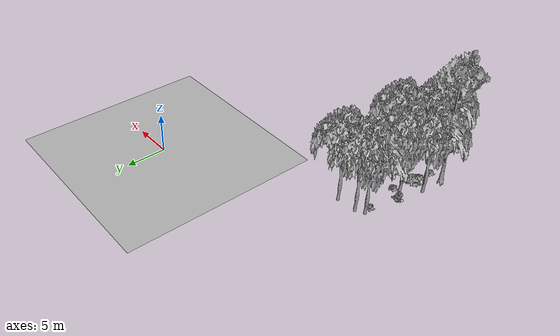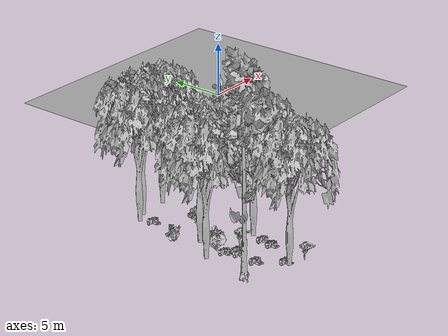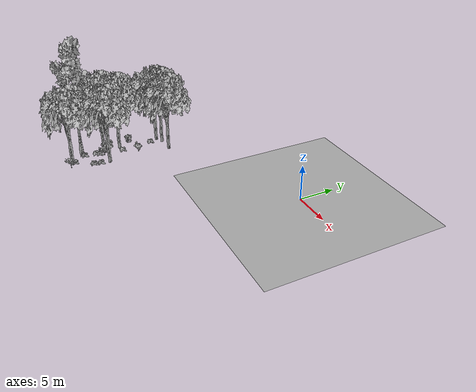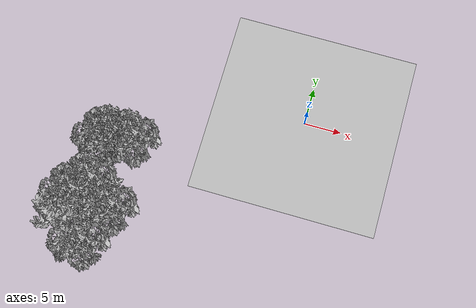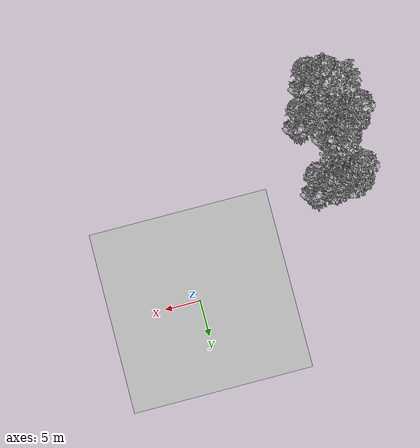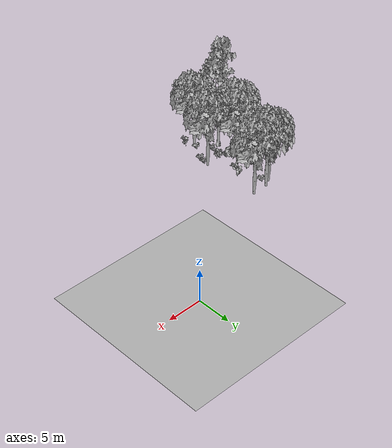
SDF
<sdf version="1.7">
 <world name="default">
  <model name="ground_plane">
   <static>1</static>
   <link name="link">
    <collision name="collision">
     <pose>-50 0 0 0 -0 0</pose>
     <geometry><plane><normal>0 0 1</normal><size>80 80</size></plane></geometry>
     <surface><contact><ode><min_depth>0.01</min_depth><max_vel>0</max_vel></ode></contact></surface>
    </collision>
    <visual name="grass">
     <cast_shadows>0</cast_shadows>
     <geometry>
      <mesh>
       <scale>0.46714285714285714 0.46714285714285714 0.1</scale>
       <uri>file://grass_plane/meshes/grass_plane.dae</uri>
      </mesh>
     </geometry>
    </visual>
   </link>
  </model>
  <model name="Tree 9">
   <static>1</static>
   <pose>-20.22070959237376 -10.405079638997606 0 1.57079 -0 0</pose>
   <link name="link">
    <collision name="collision">
     <geometry><mesh><scale>3.5 5 3.5</scale><uri>model://tree_2/meshes/tree_2.obj</uri></mesh></geometry>
    </collision>
    <visual name="visual">
     <geometry><mesh><scale>3.5 5 3.5</scale><uri>model://tree_2/meshes/tree_2.obj</uri></mesh></geometry>
    </visual>
   </link>
  </model>
  <model name="Tree 89">
   <static>1</static>
   <pose>-20.165596816237944 -19.434660324991953 0 1.57079 -0 0</pose>
   <link name="link">
    <collision name="collision">
     <geometry><mesh><scale>3.5 5 3.5</scale><uri>model://tree_2/meshes/tree_2.obj</uri></mesh></geometry>
    </collision>
    <visual name="visual">
     <geometry><mesh><scale>3.5 5 3.5</scale><uri>model://tree_2/meshes/tree_2.obj</uri></mesh></geometry>
    </visual>
   </link>
  </model>
  <model name="Tree 275">
   <static>1</static>
   <pose>-23.57356790523229 -16.978594494689663 0 1.57079 -0 0</pose>
   <link name="link">
    <collision name="collision">
     <geometry><mesh><scale>3.5 5 3.5</scale><uri>model://tree_2/meshes/tree_2.obj</uri></mesh></geometry>
    </collision>
    <visual name="visual">
     <geometry><mesh><scale>3.5 5 3.5</scale><uri>model://tree_2/meshes/tree_2.obj</uri></mesh></geometry>
    </visual>
   </link>
  </model>
  <model name="Tree 350">
   <static>1</static>
   <pose>-22.22200415156881 -24.337056356356584 0 1.57079 -0 0</pose>
   <link name="link">
    <collision name="collision">
     <geometry><mesh><scale>3.5 5 3.5</scale><uri>model://tree_2/meshes/tree_2.obj</uri></mesh></geometry>
    </collision>
    <visual name="visual">
     <geometry><mesh><scale>3.5 5 3.5</scale><uri>model://tree_2/meshes/tree_2.obj</uri></mesh></geometry>
    </visual>
   </link>
  </model>
  <model name="Tree 360">
   <static>1</static>
   <pose>-23.73368545350996 -11.094340424084479 0 1.57079 -0 0</pose>
   <link name="link">
    <collision name="collision">
     <geometry><mesh><scale>3.5 5 3.5</scale><uri>model://tree_2/meshes/tree_2.obj</uri></mesh></geometry>
    </collision>
    <visual name="visual">
     <geometry><mesh><scale>3.5 5 3.5</scale><uri>model://tree_2/meshes/tree_2.obj</uri></mesh></geometry>
    </visual>
   </link>
  </model>
  <model name="Tree 410">
   <static>1</static>
   <pose>-25.267952438469308 -18.94807655541717 0 1.57079 -0 0</pose>
   <link name="link">
    <collision name="collision">
     <geometry><mesh><scale>3.5 5 3.5</scale><uri>model://tree_2/meshes/tree_2.obj</uri></mesh></geometry>
    </collision>
    <visual name="visual">
     <geometry><mesh><scale>3.5 5 3.5</scale><uri>model://tree_2/meshes/tree_2.obj</uri></mesh></geometry>
    </visual>
   </link>
  </model>
  <model name="Tree 596">
   <static>1</static>
   <pose>-25.047793158683895 -22.37714894941177 0 1.57079 -0 0</pose>
   <link name="link">
    <collision name="collision">
     <geometry><mesh><scale>3.5 5 3.5</scale><uri>model://tree_9/meshes/tree_9.obj</uri></mesh></geometry>
    </collision>
    <visual name="visual">
     <geometry><mesh><scale>3.5 5 3.5</scale><uri>model://tree_9/meshes/tree_9.obj</uri></mesh></geometry>
    </visual>
   </link>
  </model>
  <model name="Tree 615">
   <static>1</static>
   <pose>-22.709854268227176 -10.540699368567896 0 1.57079 -0 0</pose>
   <link name="link">
    <collision name="collision">
     <geometry><mesh><scale>3.5 5 3.5</scale><uri>model://tree_2/meshes/tree_2.obj</uri></mesh></geometry>
    </collision>
    <visual name="visual">
     <geometry><mesh><scale>3.5 5 3.5</scale><uri>model://tree_2/meshes/tree_2.obj</uri></mesh></geometry>
    </visual>
   </link>
  </model>
  <model name="Bush 21">
   <static>1</static>
   <pose>-20.4885187381576 -20.645569841634757 0 1.57079 -0 0</pose>
   <link name="link">
    <collision name="collision">
     <geometry><mesh><scale>2 2 2</scale><uri>model://bush_2/meshes/bush_2.obj</uri></mesh></geometry>
     <surface><contact><collide_without_contact>false</collide_without_contact></contact></surface>
    </collision>
    <visual name="visual">
     <geometry><mesh><scale>2 2 2</scale><uri>model://bush_2/meshes/bush_2.obj</uri></mesh></geometry>
    </visual>
   </link>
  </model>
  <model name="Bush 41">
   <static>1</static>
   <pose>-23.52200729806992 -22.26623907262775 0 1.57079 -0 0</pose>
   <link name="link">
    <collision name="collision">
     <geometry><mesh><scale>2 2 2</scale><uri>model://bush_2/meshes/bush_2.obj</uri></mesh></geometry>
     <surface><contact><collide_without_contact>false</collide_without_contact></contact></surface>
    </collision>
    <visual name="visual">
     <geometry><mesh><scale>2 2 2</scale><uri>model://bush_2/meshes/bush_2.obj</uri></mesh></geometry>
    </visual>
   </link>
  </model>
  <model name="Bush 141">
   <static>1</static>
   <pose>-23.802137589768115 -19.595395702680463 0 1.57079 -0 0</pose>
   <link name="link">
    <collision name="collision">
     <geometry><mesh><scale>2 2 2</scale><uri>model://bush_2/meshes/bush_2.obj</uri></mesh></geometry>
     <surface><contact><collide_without_contact>false</collide_without_contact></contact></surface>
    </collision>
    <visual name="visual">
     <geometry><mesh><scale>2 2 2</scale><uri>model://bush_2/meshes/bush_2.obj</uri></mesh></geometry>
    </visual>
   </link>
  </model>
  <model name="Bush 164">
   <static>1</static>
   <pose>-22.075068962889823 -19.6509667586907 0 1.57079 -0 0</pose>
   <link name="link">
    <collision name="collision">
     <geometry><mesh><scale>2 2 2</scale><uri>model://bush_5/meshes/bush_5.obj</uri></mesh></geometry>
     <surface><contact><collide_without_contact>false</collide_without_contact></contact></surface>
    </collision>
    <visual name="visual">
     <geometry><mesh><scale>2 2 2</scale><uri>model://bush_5/meshes/bush_5.obj</uri></mesh></geometry>
    </visual>
   </link>
  </model>
  <model name="Bush 283">
   <static>1</static>
   <pose>-23.789711259767223 -18.82002708833867 0 1.57079 -0 0</pose>
   <link name="link">
    <collision name="collision">
     <geometry><mesh><scale>2 2 2</scale><uri>model://bush_1/meshes/bush_1.obj</uri></mesh></geometry>
     <surface><contact><collide_without_contact>false</collide_without_contact></contact></surface>
    </collision>
    <visual name="visual">
     <geometry><mesh><scale>2 2 2</scale><uri>model://bush_1/meshes/bush_1.obj</uri></mesh></geometry>
    </visual>
   </link>
  </model>
  <model name="Bush 324">
   <static>1</static>
   <pose>-23.37542340003865 -20.624147580385213 0 1.57079 -0 0</pose>
   <link name="link">
    <collision name="collision">
     <geometry><mesh><scale>2 2 2</scale><uri>model://bush_2/meshes/bush_2.obj</uri></mesh></geometry>
     <surface><contact><collide_without_contact>false</collide_without_contact></contact></surface>
    </collision>
    <visual name="visual">
     <geometry><mesh><scale>2 2 2</scale><uri>model://bush_2/meshes/bush_2.obj</uri></mesh></geometry>
    </visual>
   </link>
  </model>
  <model name="Bush 353">
   <static>1</static>
   <pose>-22.74611557328778 -16.76282384823881 0 1.57079 -0 0</pose>
   <link name="link">
    <collision name="collision">
     <geometry><mesh><scale>2 2 2</scale><uri>model://bush_2/meshes/bush_2.obj</uri></mesh></geometry>
     <surface><contact><collide_without_contact>false</collide_without_contact></contact></surface>
    </collision>
    <visual name="visual">
     <geometry><mesh><scale>2 2 2</scale><uri>model://bush_2/meshes/bush_2.obj</uri></mesh></geometry>
    </visual>
   </link>
  </model>
  <model name="Bush 406">
   <static>1</static>
   <pose>-23.35343090881082 -12.187744058762398 0 1.57079 -0 0</pose>
   <link name="link">
    <collision name="collision">
     <geometry><mesh><scale>2 2 2</scale><uri>model://bush_2/meshes/bush_2.obj</uri></mesh></geometry>
     <surface><contact><collide_without_contact>false</collide_without_contact></contact></surface>
    </collision>
    <visual name="visual">
     <geometry><mesh><scale>2 2 2</scale><uri>model://bush_2/meshes/bush_2.obj</uri></mesh></geometry>
    </visual>
   </link>
  </model>
  <model name="Bush 447">
   <static>1</static>
   <pose>-20.858926136776496 -24.803628900764558 0 1.57079 -0 0</pose>
   <link name="link">
    <collision name="collision">
     <geometry><mesh><scale>2 2 2</scale><uri>model://bush_5/meshes/bush_5.obj</uri></mesh></geometry>
     <surface><contact><collide_without_contact>false</collide_without_contact></contact></surface>
    </collision>
    <visual name="visual">
     <geometry><mesh><scale>2 2 2</scale><uri>model://bush_5/meshes/bush_5.obj</uri></mesh></geometry>
    </visual>
   </link>
  </model>
  <model name="Bush 449">
   <static>1</static>
   <pose>-20.694145679784786 -21.649247245911845 0 1.57079 -0 0</pose>
   <link name="link">
    <collision name="collision">
     <geometry><mesh><scale>2 2 2</scale><uri>model://bush_2/meshes/bush_2.obj</uri></mesh></geometry>
     <surface><contact><collide_without_contact>false</collide_without_contact></contact></surface>
    </collision>
    <visual name="visual">
     <geometry><mesh><scale>2 2 2</scale><uri>model://bush_2/meshes/bush_2.obj</uri></mesh></geometry>
    </visual>
   </link>
  </model>
  <model name="Bush 473">
   <static>1</static>
   <pose>-21.309903942535176 -14.73600699787637 0 1.57079 -0 0</pose>
   <link name="link">
    <collision name="collision">
     <geometry><mesh><scale>2 2 2</scale><uri>model://bush_0/meshes/bush_0.obj</uri></mesh></geometry>
     <surface><contact><collide_without_contact>false</collide_without_contact></contact></surface>
    </collision>
    <visual name="visual">
     <geometry><mesh><scale>2 2 2</scale><uri>model://bush_0/meshes/bush_0.obj</uri></mesh></geometry>
    </visual>
   </link>
  </model>
  <model name="Bush 514">
   <static>1</static>
   <pose>-23.034644612194157 -20.18080299471455 0 1.57079 -0 0</pose>
   <link name="link">
    <collision name="collision">
     <geometry><mesh><scale>2 2 2</scale><uri>model://bush_2/meshes/bush_2.obj</uri></mesh></geometry>
     <surface><contact><collide_without_contact>false</collide_without_contact></contact></surface>
    </collision>
    <visual name="visual">
     <geometry><mesh><scale>2 2 2</scale><uri>model://bush_2/meshes/bush_2.obj</uri></mesh></geometry>
    </visual>
   </link>
  </model>
  <model name="Bush 551">
   <static>1</static>
   <pose>-22.1438292350656 -24.03023665974848 0 1.57079 -0 0</pose>
   <link name="link">
    <collision name="collision">
     <geometry><mesh><scale>2 2 2</scale><uri>model://bush_2/meshes/bush_2.obj</uri></mesh></geometry>
     <surface><contact><collide_without_contact>false</collide_without_contact></contact></surface>
    </collision>
    <visual name="visual">
     <geometry><mesh><scale>2 2 2</scale><uri>model://bush_2/meshes/bush_2.obj</uri></mesh></geometry>
    </visual>
   </link>
  </model>
  <model name="Bush 576">
   <static>1</static>
   <pose>-24.61878331836271 -15.339195493419595 0 1.57079 -0 0</pose>
   <link name="link">
    <collision name="collision">
     <geometry><mesh><scale>2 2 2</scale><uri>model://bush_4/meshes/bush_4.obj</uri></mesh></geometry>
     <surface><contact><collide_without_contact>false</collide_without_contact></contact></surface>
    </collision>
    <visual name="visual">
     <geometry><mesh><scale>2 2 2</scale><uri>model://bush_4/meshes/bush_4.obj</uri></mesh></geometry>
    </visual>
   </link>
  </model>
 </world>
</sdf>
